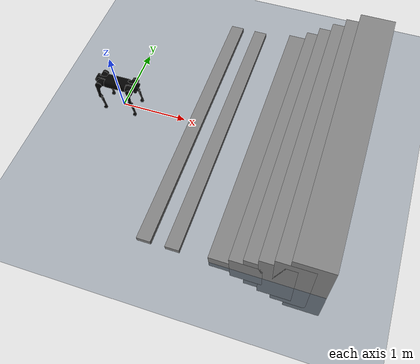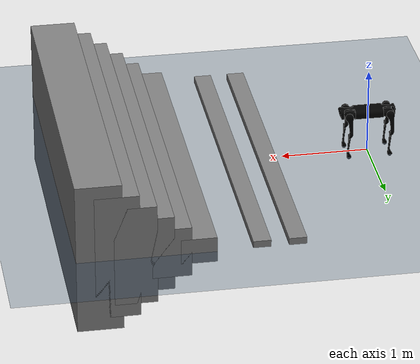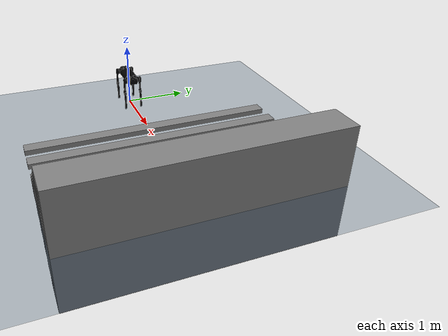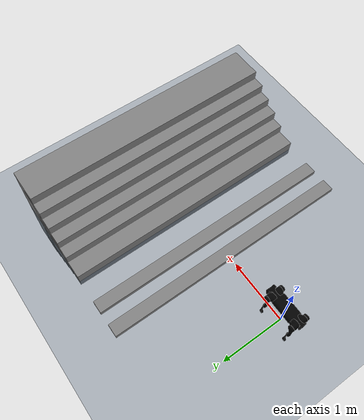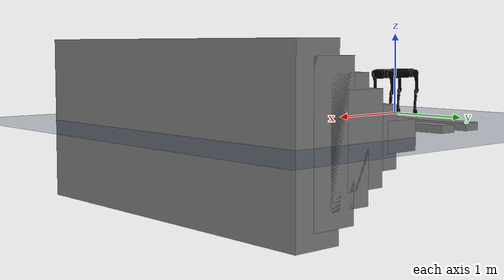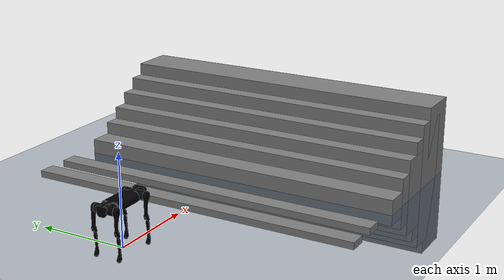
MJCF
<mujoco model="aliengo scene">
  <include file="aliengo.xml"/>

  <statistic center="1.0 0.7 1.0" extent="0.8"/>

  <visual>
    <headlight diffuse="0.6 0.6 0.6" ambient="0.1 0.1 0.1" specular="0.9 0.9 0.9"/>
    <rgba haze="0.15 0.25 0.35 1"/>
    <global azimuth="-140" elevation="-20"/>
  </visual>

  <asset>
    <texture type="skybox" builtin="flat" rgb1="0 0 0" rgb2="0 0 0" width="512" height="3072"/>
    <texture type="2d" name="groundplane" builtin="checker" mark="edge" rgb1="0.2 0.3 0.4" rgb2="0.1 0.2 0.3" markrgb="0.8 0.8 0.8" width="300" height="300"/>
    <material name="groundplane" texture="groundplane" texuniform="true" texrepeat="5 5" reflectance="0.2"/>
  </asset>

  <worldbody>
    <light pos="1 0 3.5" dir="0 0 -1" directional="true"/>
    <geom name="floor" size="0 0 0.05" type="plane" material="groundplane"/>

    <geom pos="1.2 0 0.04" type="box"  size="0.1 2 0.04" quat="1.0 0 0 0"/>
    <geom pos="1.6 0 0.04" type="box"  size="0.1 2 0.04" quat="1.0 0 0 0"/>

    <geom pos="2.3 0 0.02" type="box"  size="0.2 2 0.15" quat="1.0 0 0 0"/>
    <geom pos="2.6 0 0.02" type="box"  size="0.22 2 0.3" quat="1.0 0 0 0"/>
    <geom pos="2.8 0 0.02" type="box"  size="0.23 2 0.45" quat="1.0 0 0 0"/>
    <geom pos="3 0 0.02" type="box"  size="0.24 2 0.6" quat="1.0 0 0 0"/>
    <geom pos="3.2 0 0.02" type="box"  size="0.25 2 0.75" quat="1.0 0 0 0"/>
    <geom pos="3.4 0 0.02" type="box"  size="0.26 2 0.9" quat="1.0 0 0 0"/>

  </worldbody>
</mujoco>

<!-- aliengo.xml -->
<mujoco model="aliengo">
  <compiler angle="radian" meshdir="assets" autolimits="true"/>

  <default>
    <default class="aliengo">
      <geom friction="0.4" margin="0.001" condim="1"/>
      <joint axis="0 1 0" damping="0.1" armature="0.01" frictionloss="0.2"/>
      <default class="abduction">
        <joint axis="1 0 0" range="-1.22173 1.22173"/>
      </default>
      <default class="hip">
        <default class="front_hip">
          <joint range="-1.5708 3.4907"/>
        </default>
        <default class="back_hip">
          <joint range="-0.5236 4.5379"/>
        </default>
      </default>
      <default class="knee">
        <joint range="-2.77507 -0.64577"/>
      </default>
      <default class="visual">
        <geom contype="0" conaffinity="0" group="2"/>
      </default>
      <default class="collision">
        <geom group="3"/>
        <default class="foot">
          <geom type="sphere" size="0.0265" pos="0 0 -0.25" priority="1" condim="6"
            friction="0.8 0.02 0.01"/>
        </default>
      </default>
    </default>
  </default>

  <asset>
    <mesh name="base" file="trunk.obj"/>
    <mesh name="hip" file="hip.obj"/>
    <mesh name="thigh" file="thigh.obj"/>
    <mesh name="thigh_mirror" file="thigh_mirror.obj"/>
    <mesh name="calf" file="calf.obj"/>
    <material name="metal" rgba=".9 .95 .95 1" />
    <material name="black" rgba="0 0 0 1" />
    <material name="white" rgba="1 1 1 1" />
    <material name="gray" rgba="0.671705 0.692426 0.774270 1" />
  </asset>

  <worldbody>
    <body name="base" pos="0 0 0.5" childclass="aliengo">
      <joint name="floating_base_joint" type="free"/>
      <inertial pos="0.008811 0.003839 0.000273" mass="11.644"
        fullinertia="0.051944892 0.24693924 0.270948307 0.001703617 0.000235941 0.000119783"/>
      <geom type="mesh" mesh="base" material="black" class="visual"/>
      <geom size="0.3235 0.075 0.056" type="box" material="black" class="collision"/>
      <site name="imu" pos="0 0 0"/>

      <!-- Front Left Leg -->
      <body name="FL_hip" pos="0.2407 0.051 0">
        <inertial pos="-0.022191 0.015144 -1.5e-05" mass="1.993"
          fullinertia="0.002446735 0.003925876 0.004148145 -0.00059805 1.945e-06 1.284e-06"/>
        <joint name="FL_hip_joint" class="abduction"/>
        <geom type="mesh" mesh="hip" material="black" class="visual"/>
        <geom type="cylinder" pos="0 0.083 0" euler="1.5708 0 0" size="0.046 0.0209" class="collision"/>
        <body name="FL_thigh" pos="0 0.0868 0">
          <inertial pos="-0.005607 -0.003877 -0.048199" mass="0.639"
            fullinertia="0.004173855 0.004343802 0.000340136 1.0284e-05 -0.000318874 0.000109233"/>
          <joint name="FL_thigh_joint" class="front_hip"/>
          <geom type="mesh" mesh="thigh" material="black" class="visual"/>
          <geom type="box" size="0.125 0.0187 0.0215" pos="0 0 -0.125" euler="0 1.5708 0" class="collision"/>
          <body name="FL_calf" pos="0 0 -0.25">
            <inertial pos="0.002781 6.3e-05 -0.142518" mass="0.207"
              fullinertia="0.002129279 0.002141463 3.7583e-05 3.9e-08 5.757e-06 -5.16e-07"/>
            <joint name="FL_calf_joint" class="knee"/>
            <geom type="mesh" mesh="calf" material="black" class="visual"/>
            <geom type="box" size="0.125 0.0104 0.008" pos="0 0 -0.125" euler="0 1.5708 0" class="collision"/>
            <geom name="FL" class="foot"/>
            <body name="FL_foot" pos="0 0 -0.25" >
                <inertial mass="0.00" pos="0 0 0" fullinertia="0.0001 0.0001 0.0001 0 0 0"/>
            </body>
          </body>
        </body>
      </body>
      <!-- Front Right Leg -->
      <body name="FR_hip" pos="0.2407 -0.051 0">
        <inertial pos="-0.022191 -0.015144 -1.5e-05" mass="1.993"
          fullinertia="0.002446735 0.003925876 0.004148145 0.00059805 1.945e-06 -1.284e-06"/>
        <joint name="FR_hip_joint" class="abduction"/>
        <geom type="mesh" mesh="hip" material="black" class="visual" euler="3.1416 0 0"/>
        <geom type="cylinder" pos="0 -0.083 0" euler="1.5708 0 0" size="0.046 0.0209" class="collision"/>
        <body name="FR_thigh" pos="0 -0.0868 0">
          <inertial pos="-0.005607 0.003877 -0.048199" mass="0.639"
            fullinertia="0.004173855 0.004343802 0.000340136 -1.0284e-05 -0.000318874 -0.000109233"/>
          <joint name="FR_thigh_joint" class="front_hip"/>
          <geom type="mesh" mesh="thigh_mirror" material="black" class="visual" />
          <geom type="box" size="0.125 0.0187 0.0215" pos="0 0 -0.125" euler="0 1.5708 0" class="collision"/>
          <body name="FR_calf" pos="0 0 -0.25">
            <inertial pos="0.002781 6.3e-05 -0.142518" mass="0.207"
              fullinertia="0.002129279 0.002141463 3.7583e-05 3.9e-08 5.757e-06 -5.16e-07"/>
            <joint name="FR_calf_joint" class="knee" />
            <geom type="mesh" mesh="calf" material="black" class="visual"/>
            <geom type="box" size="0.125 0.0104 0.008" pos="0 0 -0.125" euler="0 1.5708 0" class="collision"/>
            <geom name="FR" class="foot"/>
            <body name="FR_foot" pos="0 0 -0.25" >
                <inertial mass="0.00" pos="0 0 0" fullinertia="0.0001 0.0001 0.0001 0 0 0"/>
            </body>
          </body>
        </body>
      </body>

      <!-- Rear Left Leg -->
      <body name="RL_hip" pos="-0.2407 0.051 0">
        <inertial pos="0.022191 0.015144 -1.5e-05" mass="1.993"
          fullinertia="0.002446735 0.003925876 0.004148145 0.00059805 -1.945e-06 1.284e-06"/>
        <joint name="RL_hip_joint" class="abduction"/>
        <geom type="mesh" mesh="hip" material="black" class="visual" euler="0 3.1416 0"/>
        <geom type="cylinder" pos="0 0.083 0" euler="1.5708 0 0" size="0.046 0.0209" class="collision"/>
        <body name="RL_thigh" pos="0 0.0868 0">
          <inertial pos="-0.005607 -0.003877 -0.048199" mass="0.639"
            fullinertia="0.004173855 0.004343802 0.000340136 1.0284e-05 -0.000318874 0.000109233"/>
          <joint name="RL_thigh_joint" class="back_hip"/>
          <geom type="mesh" mesh="thigh" material="black" class="visual"/>
          <geom type="box" size="0.125 0.0187 0.0215" pos="0 0 -0.125" euler="0 1.5708 0" class="collision"/>
          <body name="RL_calf" pos="0 0 -0.25">
            <inertial pos="0.002781 6.3e-05 -0.142518" mass="0.207"
              fullinertia="0.002129279 0.002141463 3.7583e-05 3.9e-08 5.757e-06 -5.16e-07"/>
            <joint name="RL_calf_joint" class="knee"/>
            <geom type="mesh" mesh="calf" material="black" class="visual"/>
            <geom type="box" size="0.125 0.0104 0.008" pos="0 0 -0.125" euler="0 1.5708 0" class="collision"/>
            <geom name="RL" class="foot"/>
            <body name="RL_foot" pos="0 0 -0.25" >
                <inertial mass="0.00" pos="0 0 0" fullinertia="0.0001 0.0001 0.0001 0 0 0"/>
            </body>
          </body>
        </body>
      </body>

      <!-- Rear Right Leg -->
      <body name="RR_hip" pos="-0.2407 -0.051 0">
        <inertial pos="0.022191 -0.015144 -1.5e-05" mass="1.993"
          fullinertia="0.002446735 0.003925876 0.004148145 -0.00059805 -1.945e-06 -1.284e-06"/>
        <joint name="RR_hip_joint" class="abduction"/>
        <geom type="mesh" mesh="hip" material="black" class="visual" euler="3.1416 3.1416 0"/>
        <geom type="cylinder" pos="0 -0.083 0" euler="1.5708 0 0" size="0.046 0.0209" class="collision"/>
        <body name="RR_thigh" pos="0 -0.0868 0">
          <inertial pos="-0.005607 0.003877 -0.048199" mass="0.639"
            fullinertia="0.004173855 0.004343802 0.000340136 -1.0284e-05 -0.000318874 -0.000109233"/>
          <joint name="RR_thigh_joint" class="back_hip"/>
          <geom type="mesh" mesh="thigh_mirror" material="black" class="visual"/>
          <geom type="box" size="0.125 0.0187 0.0215" pos="0 0 -0.125" euler="0 1.5708 0" class="collision"/>
          <body name="RR_calf" pos="0 0 -0.25">
            <inertial pos="0.002781 6.3e-05 -0.142518" mass="0.207"
              fullinertia="0.002129279 0.002141463 3.7583e-05 3.9e-08 5.757e-06 -5.16e-07"/>
            <joint name="RR_calf_joint" class="knee"/>
            <geom type="mesh" mesh="calf" material="black" class="visual"/>
            <geom type="box" size="0.125 0.0104 0.008" pos="0 0 -0.125" euler="0 1.5708 0" class="collision"/>
            <geom name="RR" class="foot"/>
            <body name="RR_foot" pos="0 0 -0.25" >
                <inertial mass="0.00" pos="0 0 0" fullinertia="0.0001 0.0001 0.0001 0 0 0"/>
            </body>
          </body>
        </body>
      </body>
    </body>

  </worldbody>

  <actuator>
    <motor class="abduction"     ctrlrange="-35.278 35.278"               name="FL_hip" joint="FL_hip_joint"/>
    <motor class="hip"           ctrlrange="-35.278 35.278"               name="FL_thigh" joint="FL_thigh_joint"/>
    <motor class="knee"          ctrlrange="-44.4 44.4"               name="FL_calf" joint="FL_calf_joint"/>
    <motor class="abduction"     ctrlrange="-35.278 35.278"               name="FR_hip" joint="FR_hip_joint"/>
    <motor class="hip"           ctrlrange="-35.278 35.278"               name="FR_thigh" joint="FR_thigh_joint"/>
    <motor class="knee"          ctrlrange="-44.4 44.4"               name="FR_calf" joint="FR_calf_joint"/>
    <motor class="abduction"     ctrlrange="-35.278 35.278"               name="RL_hip" joint="RL_hip_joint"/>
    <motor class="hip"           ctrlrange="-35.278 35.278"               name="RL_thigh" joint="RL_thigh_joint"/>
    <motor class="knee"          ctrlrange="-44.4 44.4"               name="RL_calf" joint="RL_calf_joint"/>
    <motor class="abduction"     ctrlrange="-35.278 35.278"               name="RR_hip" joint="RR_hip_joint"/>
    <motor class="hip"           ctrlrange="-35.278 35.278"               name="RR_thigh" joint="RR_thigh_joint"/>
    <motor class="knee"          ctrlrange="-44.4 44.4"               name="RR_calf" joint="RR_calf_joint"/>
  </actuator>

  <sensor>
    <!-- Joint positions -->
    <jointpos name="FL_hip_pos" joint="FL_hip_joint"/>
    <jointpos name="FL_thigh_pos" joint="FL_thigh_joint"/>
    <jointpos name="FL_calf_pos" joint="FL_calf_joint"/>
    <jointpos name="FR_hip_pos" joint="FR_hip_joint"/>
    <jointpos name="FR_thigh_pos" joint="FR_thigh_joint"/>
    <jointpos name="FR_calf_pos" joint="FR_calf_joint"/>
    <jointpos name="RL_hip_pos" joint="RL_hip_joint"/>
    <jointpos name="RL_thigh_pos" joint="RL_thigh_joint"/>
    <jointpos name="RL_calf_pos" joint="RL_calf_joint"/>
    <jointpos name="RR_hip_pos" joint="RR_hip_joint"/>
    <jointpos name="RR_thigh_pos" joint="RR_thigh_joint"/>
    <jointpos name="RR_calf_pos" joint="RR_calf_joint"/>

    <!-- Joint velocities -->
    <jointvel name="FL_hip_vel" joint="FL_hip_joint"/>
    <jointvel name="FL_thigh_vel" joint="FL_thigh_joint"/>
    <jointvel name="FL_calf_vel" joint="FL_calf_joint"/>
    <jointvel name="FR_hip_vel" joint="FR_hip_joint"/>
    <jointvel name="FR_thigh_vel" joint="FR_thigh_joint"/>
    <jointvel name="FR_calf_vel" joint="FR_calf_joint"/>
    <jointvel name="RL_hip_vel" joint="RL_hip_joint"/>
    <jointvel name="RL_thigh_vel" joint="RL_thigh_joint"/>
    <jointvel name="RL_calf_vel" joint="RL_calf_joint"/>
    <jointvel name="RR_hip_vel" joint="RR_hip_joint"/>
    <jointvel name="RR_thigh_vel" joint="RR_thigh_joint"/>
    <jointvel name="RR_calf_vel" joint="RR_calf_joint"/>

    <!-- Joint torques -->
    <jointactuatorfrc name="FL_hip_torque" joint="FL_hip_joint" noise="0.01" />
    <jointactuatorfrc name="FL_thigh_torque" joint="FL_thigh_joint" noise="0.01" />
    <jointactuatorfrc name="FL_calf_torque" joint="FL_calf_joint" noise="0.01" />
    <jointactuatorfrc name="FR_hip_torque" joint="FR_hip_joint" noise="0.01" />
    <jointactuatorfrc name="FR_thigh_torque" joint="FR_thigh_joint" noise="0.01" />
    <jointactuatorfrc name="FR_calf_torque" joint="FR_calf_joint" noise="0.01" />
    <jointactuatorfrc name="RL_hip_torque" joint="RL_hip_joint" noise="0.01" />
    <jointactuatorfrc name="RL_thigh_torque" joint="RL_thigh_joint" noise="0.01" />
    <jointactuatorfrc name="RL_calf_torque" joint="RL_calf_joint" noise="0.01" />
    <jointactuatorfrc name="RR_hip_torque" joint="RR_hip_joint" noise="0.01" />
    <jointactuatorfrc name="RR_thigh_torque" joint="RR_thigh_joint" noise="0.01" />
    <jointactuatorfrc name="RR_calf_torque" joint="RR_calf_joint" noise="0.01" />

    <!-- IMU sensors -->
    <framequat name="imu_quat" objtype="site" objname="imu"/>
    <gyro name="imu_gyro" site="imu"/>
    <accelerometer name="imu_acc" site="imu"/>
    <framepos name="frame_pos" objtype="site" objname="imu" />
    <framelinvel name="frame_vel" objtype="site" objname="imu" />
    <!-- Base position and velocity -->
    <framepos name="base_pos" objtype="body" objname="base"/>
    <framelinvel name="base_vel" objtype="body" objname="base"/>
  </sensor>
  <keyframe>
    <key name="home"
        qpos="0 0 0.445 1 0 0 0
              0.1 0.8 -1.5  -0.1 0.8 -1.5
              0.1 1.0 -1.5  -0.1 1.0 -1.5"
        ctrl="0 0.9 -1.8 0 0.9 -1.8 0 0.9 -1.8 0 0.9 -1.8" />
  </keyframe>
</mujoco>
